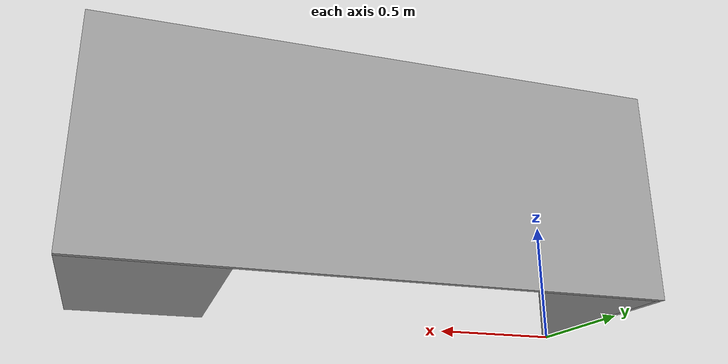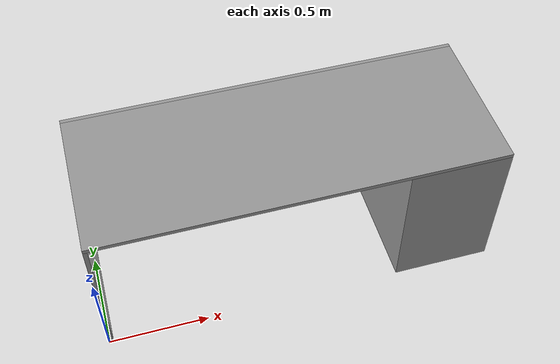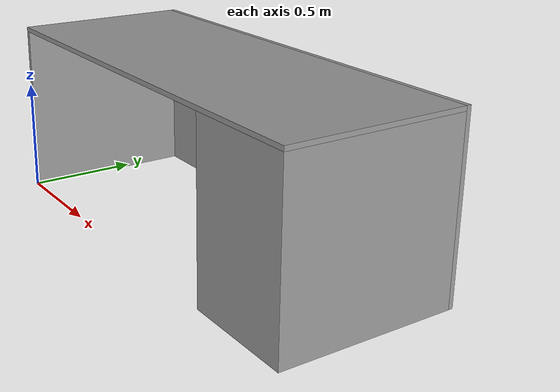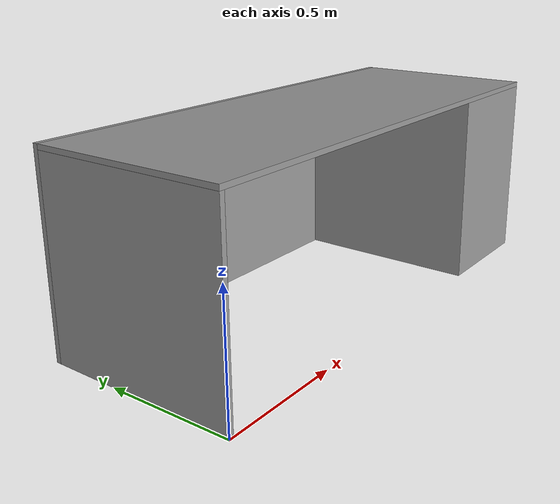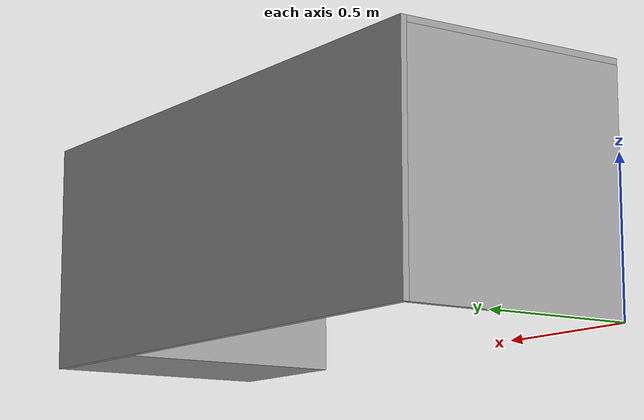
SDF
<?xml version="1.0"?>
<sdf version="1.7">

	<model name="OfficeTable">

		<static>true</static>
		<link name="link">
			<collision name="drawers_collision">
				<pose>1.75 0.385 0.38 0 0 0</pose>
				<geometry>
					<box>
						<size>0.5 0.77 0.76</size>
					</box>
				</geometry>
			</collision>
			<visual name="drawers_visual">
				<pose>1.75 0.385 0.38 0 0 0</pose>
				<geometry>
					<box>
						<size>0.5 0.77 0.76</size>
					</box>
				</geometry>
				<material>
					<script>
						<uri>file://media/materials/scripts/gazebo.material</uri>
						<name>Gazebo/Grey</name>
					</script>

					<ambient>1 1 1 1</ambient>
					<diffuse>0.35 0.35 0.35 1</diffuse>
					<specular>0.02 0.02 0.02 1</specular>
					<emissive>0 0 0 1</emissive>
				</material>
			</visual>

			<collision name="sidesupport_collision">
				<pose>0.01 0.385 0.38 0 0 0</pose>
				<geometry>
					<box>
						<size>0.02 0.77 0.76</size>
					</box>
				</geometry>
			</collision>
			<visual name="sidesupport_visual">
				<pose>0.01 0.385 0.38 0 0 0</pose>
				<geometry>
					<box>
						<size>0.02 0.77 0.76</size>
					</box>
				</geometry>
				<material>
					<script>
						<uri>file://media/materials/scripts/gazebo.material</uri>
						<name>Gazebo/Grey</name>
					</script>

					<ambient>1 1 1 1</ambient>
					<diffuse>0.35 0.35 0.35 1</diffuse>
					<specular>0.02 0.02 0.02 1</specular>
					<emissive>0 0 0 1</emissive>
				</material>
			</visual>

			<collision name="tabletop_collision">
				<pose>1.0 0.385 0.77 0 0 0</pose>
				<geometry>
					<box>
						<size>2.0 0.77 0.02</size>
					</box>
				</geometry>
			</collision>
			<visual name="tabletop_visual">
				<pose>1.0 0.385 0.77 0 0 0</pose>
				<geometry>
					<box>
						<size>2.0 0.77 0.02</size>
					</box>
				</geometry>
				<material>
					<script>
						<uri>file://media/materials/scripts/gazebo.material</uri>
						<name>Gazebo/Grey</name>
					</script>

					<ambient>1 1 1 1</ambient>
					<diffuse>0.95 0.95 0.95 1</diffuse>
					<specular>0.02 0.02 0.02 1</specular>
					<emissive>0 0 0 1</emissive>
				</material>
			</visual>

			<collision name="frontsupport_collision">
				<pose> 1.0 0.78 0.39 0 0 0</pose>
				<geometry>
					<box>
						<size>2.0 0.02 0.78</size>
					</box>
				</geometry>
			</collision>
			<visual name="frontsupport_visual">
				<pose>1.0 0.78 0.39 0 0 0</pose>
				<geometry>
					<box>
						<size>2.0 0.02 0.78</size>
					</box>
				</geometry>
				<material>
					<script>
						<uri>file://media/materials/scripts/gazebo.material</uri>
						<name>Gazebo/Grey</name>
					</script>

					<ambient>1 1 1 1</ambient>
					<diffuse>0.95 0.95 0.95 1</diffuse>
					<specular>0.02 0.02 0.02 1</specular>
					<emissive>0 0 0 1</emissive>
				</material>
			</visual>
		</link>
	</model>
</sdf>
